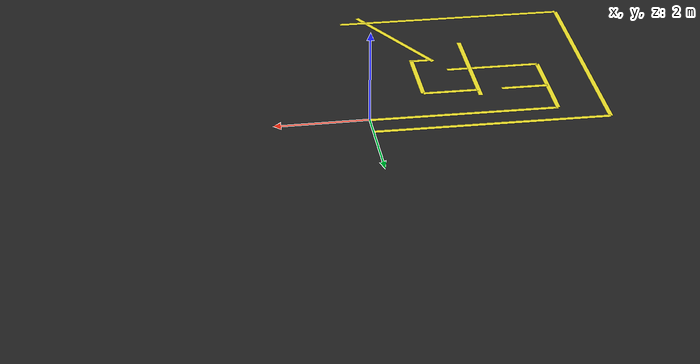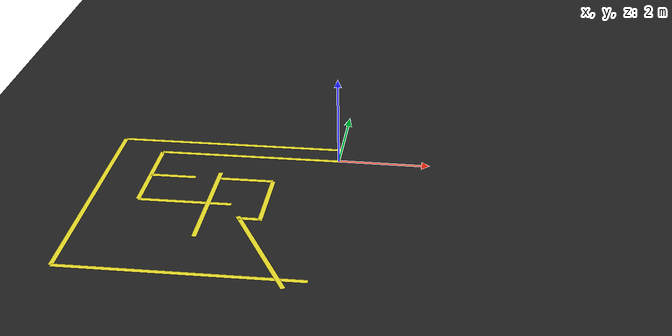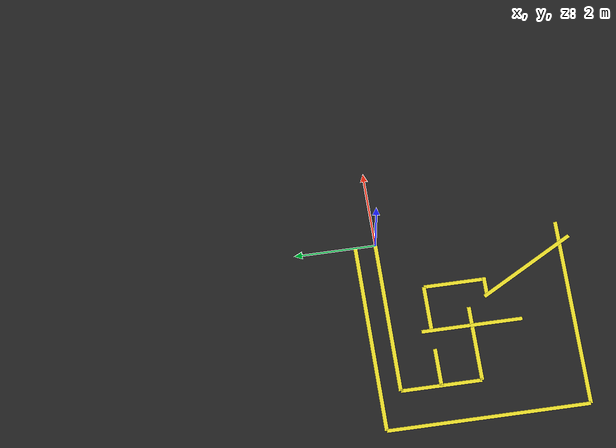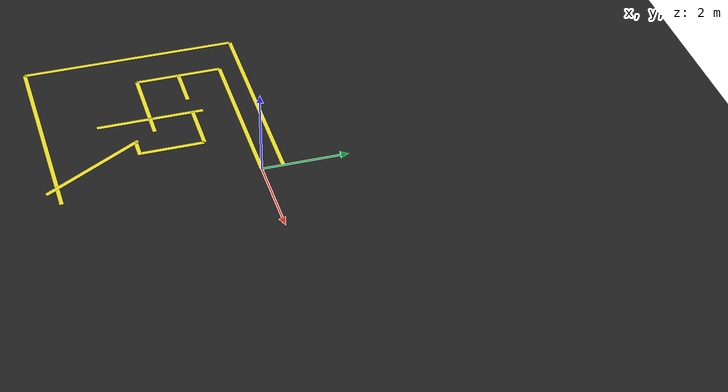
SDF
<?xml version="1.0"?>
<sdf version="1.4">
  <world name="default">
    <scene>
      <ambient>0 0 0 1</ambient>
      <shadows>0</shadows>
      <grid>0</grid>
      <background>0.7 0.7 0.7 1</background>
    </scene>
    <include>
      <uri>model://sun</uri>
    </include>
    <model name="ground">
      <static>true</static>
      <link name="link_ground">
      <collision name="collision">
        <geometry>
          <plane>
            <normal>0 0 1</normal>
            <size>15 15</size>
          </plane>
        </geometry>
        <surface>
          <friction>
            <ode>
              <mu>100</mu>
              <mu2>50</mu2>
            </ode>
          </friction>
        </surface>
      </collision>
      <visual name="visual_ground">
        <cast_shadows>false</cast_shadows>
        <geometry>
          <plane>
            <normal>0 0 1</normal>
            <size>15 15</size>
          </plane>
        </geometry>
       <material>
          <script>
            <uri>file://media/materials/scripts/gazebo.material</uri>
            <name>Gazebo/Black</name>
          </script>
        </material>
      </visual>
      </link>
      <pose frame=''>0 0 -0.0001 0 0 1.5708</pose>
    </model>
    <model name="white line c3">
      <static>true</static>
      <link name="link_ground">
      <collision name="collision">
        <geometry>
          <plane>
            <normal>0 0 1</normal>
            <size>0.1 5</size>
          </plane>
        </geometry>
        <surface>
          <friction>
            <ode>
              <mu>100</mu>
              <mu2>50</mu2>
            </ode>
          </friction>
        </surface>
      </collision>
      <visual name="visual_ground">
        <cast_shadows>false</cast_shadows>
        <geometry>
          <plane>
            <normal>0 0 1</normal>
            <size>0.1 5</size>
          </plane>
        </geometry>
       <material>
          <script>
            <uri>file://media/materials/scripts/gazebo.material</uri>
            <name>Gazebo/Yellow</name>
          </script>
        </material>
      </visual>
      </link>
      <pose frame=''>-2.5 -4.5 0 0 0 1.5708</pose>
    </model>
    <model name="white line c2">
      <static>true</static>
      <link name="link_ground">
      <collision name="collision">
        <geometry>
          <plane>
            <normal>0 0 1</normal>
            <size>0.1 5</size>
          </plane>
        </geometry>
        <surface>
          <friction>
            <ode>
              <mu>100</mu>
              <mu2>50</mu2>
            </ode>
          </friction>
        </surface>
      </collision>
      <visual name="visual_ground">
        <cast_shadows>false</cast_shadows>
        <geometry>
          <plane>
            <normal>0 0 1</normal>
            <size>0.1 5</size>
          </plane>
        </geometry>
       <material>
          <script>
            <uri>file://media/materials/scripts/gazebo.material</uri>
            <name>Gazebo/Yellow</name>
          </script>
        </material>
      </visual>
      </link>
      <pose frame=''>-2.5 0.5 0 0 0 1.5708</pose>
    </model>
    <model name="white line c1">
      <static>true</static>
      <link name="link_ground">
      <collision name="collision">
        <geometry>
          <plane>
            <normal>0 0 1</normal>
            <size>0.1 5</size>
          </plane>
        </geometry>
        <surface>
          <friction>
            <ode>
              <mu>100</mu>
              <mu2>50</mu2>
            </ode>
          </friction>
        </surface>
      </collision>
      <visual name="visual_ground">
        <cast_shadows>false</cast_shadows>
        <geometry>
          <plane>
            <normal>0 0 1</normal>
            <size>0.1 5</size>
          </plane>
        </geometry>
       <material>
          <script>
            <uri>file://media/materials/scripts/gazebo.material</uri>
            <name>Gazebo/Yellow</name>
          </script>
        </material>
      </visual>
      </link>
      <pose frame=''>-5 -2 0 0 0 0</pose>
    </model>
    <model name="white line e1">
      <static>true</static>
      <link name="link_ground">
      <collision name="collision">
        <geometry>
          <plane>
            <normal>0 0 1</normal>
            <size>0.1 4</size>
          </plane>
        </geometry>
        <surface>
          <friction>
            <ode>
              <mu>100</mu>
              <mu2>50</mu2>
            </ode>
          </friction>
        </surface>
      </collision>
      <visual name="visual_ground">
        <cast_shadows>false</cast_shadows>
        <geometry>
          <plane>
            <normal>0 0 1</normal>
            <size>0.1 4</size>
          </plane>
        </geometry>
       <material>
          <script>
            <uri>file://media/materials/scripts/gazebo.material</uri>
            <name>Gazebo/Yellow</name>
          </script>
        </material>
      </visual>
      </link>
      <pose frame=''>-2 0 0 0 0 1.5708</pose>
    </model>
    <model name="white line e2">
      <static>true</static>
      <link name="link_ground">
      <collision name="collision">
        <geometry>
          <plane>
            <normal>0 0 1</normal>
            <size>0.1 2</size>
          </plane>
        </geometry>
        <surface>
          <friction>
            <ode>
              <mu>100</mu>
              <mu2>50</mu2>
            </ode>
          </friction>
        </surface>
      </collision>
      <visual name="visual_ground">
        <cast_shadows>false</cast_shadows>
        <geometry>
          <plane>
            <normal>0 0 1</normal>
            <size>0.1 2</size>
          </plane>
        </geometry>
       <material>
          <script>
            <uri>file://media/materials/scripts/gazebo.material</uri>
            <name>Gazebo/Yellow</name>
          </script>
        </material>
      </visual>
      </link>
      <pose frame=''>-4 -1 0 0 0 0</pose>
    </model>
    <model name="white line e3">
      <static>true</static>
      <link name="link_ground">
      <collision name="collision">
        <geometry>
          <plane>
            <normal>0 0 1</normal>
            <size>0.1 1</size>
          </plane>
        </geometry>
        <surface>
          <friction>
            <ode>
              <mu>100</mu>
              <mu2>50</mu2>
            </ode>
          </friction>
        </surface>
      </collision>
      <visual name="visual_ground">
        <cast_shadows>false</cast_shadows>
        <geometry>
          <plane>
            <normal>0 0 1</normal>
            <size>0.1 1</size>
          </plane>
        </geometry>
       <material>
          <script>
            <uri>file://media/materials/scripts/gazebo.material</uri>
            <name>Gazebo/Yellow</name>
          </script>
        </material>
      </visual>
      </link>
      <pose frame=''>-3.5 -1 0 0 0 1.5708</pose>
    </model>
    <model name="white line e4">
      <static>true</static>
      <link name="link_ground">
      <collision name="collision">
        <geometry>
          <plane>
            <normal>0 0 1</normal>
            <size>0.1 2</size>
          </plane>
        </geometry>
        <surface>
          <friction>
            <ode>
              <mu>100</mu>
              <mu2>50</mu2>
            </ode>
          </friction>
        </surface>
      </collision>
      <visual name="visual_ground">
        <cast_shadows>false</cast_shadows>
        <geometry>
          <plane>
            <normal>0 0 1</normal>
            <size>0.1 2</size>
          </plane>
        </geometry>
       <material>
          <script>
            <uri>file://media/materials/scripts/gazebo.material</uri>
            <name>Gazebo/Yellow</name>
          </script>
        </material>
      </visual>
      </link>
      <pose frame=''>-3 -2 0 0 0 1.5708</pose>
    </model>
    <model name="white line r1">
      <static>true</static>
      <link name="link_ground">
      <collision name="collision">
        <geometry>
          <plane>
            <normal>0 0 1</normal>
            <size>0.1 2.5</size>
          </plane>
        </geometry>
        <surface>
          <friction>
            <ode>
              <mu>100</mu>
              <mu2>50</mu2>
            </ode>
          </friction>
        </surface>
      </collision>
      <visual name="visual_ground">
        <cast_shadows>false</cast_shadows>
        <geometry>
          <plane>
            <normal>0 0 1</normal>
            <size>0.1 2.5</size>
          </plane>
        </geometry>
       <material>
          <script>
            <uri>file://media/materials/scripts/gazebo.material</uri>
            <name>Gazebo/Yellow</name>
          </script>
        </material>
      </visual>
      </link>
      <pose frame=''>-2.5 -2 0 0 0 0</pose>
    </model>
    <model name="white line r2">
      <static>true</static>
      <link name="link_ground">
      <collision name="collision">
        <geometry>
          <plane>
            <normal>0 0 1</normal>
            <size>0.1 1.2</size>
          </plane>
        </geometry>
        <surface>
          <friction>
            <ode>
              <mu>100</mu>
              <mu2>50</mu2>
            </ode>
          </friction>
        </surface>
      </collision>
      <visual name="visual_ground">
        <cast_shadows>false</cast_shadows>
        <geometry>
          <plane>
            <normal>0 0 1</normal>
            <size>0.1 1.2</size>
          </plane>
        </geometry>
       <material>
          <script>
            <uri>file://media/materials/scripts/gazebo.material</uri>
            <name>Gazebo/Yellow</name>
          </script>
        </material>
      </visual>
      </link>
      <pose frame=''>-1.9 -1 0 0 0 1.5708</pose>
    </model>
    <model name="white line r3">
      <static>true</static>
      <link name="link_ground">
      <collision name="collision">
        <geometry>
          <plane>
            <normal>0 0 1</normal>
            <size>0.1 1.5</size>
          </plane>
        </geometry>
        <surface>
          <friction>
            <ode>
              <mu>100</mu>
              <mu2>50</mu2>
            </ode>
          </friction>
        </surface>
      </collision>
      <visual name="visual_ground">
        <cast_shadows>false</cast_shadows>
        <geometry>
          <plane>
            <normal>0 0 1</normal>
            <size>0.1 1.5</size>
          </plane>
        </geometry>
       <material>
          <script>
            <uri>file://media/materials/scripts/gazebo.material</uri>
            <name>Gazebo/Yellow</name>
          </script>
        </material>
      </visual>
      </link>
      <pose frame=''>-1.3 -1.75 0 0 0 0</pose>
    </model>
    <model name="white line r4">
      <static>true</static>
      <link name="link_ground">
      <collision name="collision">
        <geometry>
          <plane>
            <normal>0 0 1</normal>
            <size>0.1 0.5</size>
          </plane>
        </geometry>
        <surface>
          <friction>
            <ode>
              <mu>100</mu>
              <mu2>50</mu2>
            </ode>
          </friction>
        </surface>
      </collision>
      <visual name="visual_ground">
        <cast_shadows>false</cast_shadows>
        <geometry>
          <plane>
            <normal>0 0 1</normal>
            <size>0.1 0.5</size>
          </plane>
        </geometry>
       <material>
          <script>
            <uri>file://media/materials/scripts/gazebo.material</uri>
            <name>Gazebo/Yellow</name>
          </script>
        </material>
      </visual>
      </link>
      <pose frame=''>-1.5 -2.5 0 0 0 1.5708</pose>
    </model>
    <model name="white line r5">
      <static>true</static>
      <link name="link_ground">
      <collision name="collision">
        <geometry>
          <plane>
            <normal>0 0 1</normal>
            <size>0.1 2.7</size>
          </plane>
        </geometry>
        <surface>
          <friction>
            <ode>
              <mu>100</mu>
              <mu2>50</mu2>
            </ode>
          </friction>
        </surface>
      </collision>
      <visual name="visual_ground">
        <cast_shadows>false</cast_shadows>
        <geometry>
          <plane>
            <normal>0 0 1</normal>
            <size>0.1 2.7</size>
          </plane>
        </geometry>
       <material>
          <script>
            <uri>file://media/materials/scripts/gazebo.material</uri>
            <name>Gazebo/Yellow</name>
          </script>
        </material>
      </visual>
      </link>
      <pose frame=''>-1.1 -3.6 0 0 0 0.523599</pose>
    </model>
    <model name="ground">
      <pose>1 2.3 -.1 0 0 0</pose>
      <static>1</static>
      <link name="ground">
        <collision name="ground_coll">
          <geometry>
            <box>
              <size>10 10 .1</size>
            </box>
          </geometry>
          <surface>
            <contact>
              <ode/>
            </contact>
          </surface>
        </collision>
        <visual name="ground_vis">
          <geometry>
            <box>
              <size>10 10 .1</size>
            </box>
          </geometry>
          <material>
            <script>
              <uri>file://course.material</uri>
              <name>course</name>
            </script>
          </material>
        </visual>
      </link>
    </model>
  </world>
</sdf>
